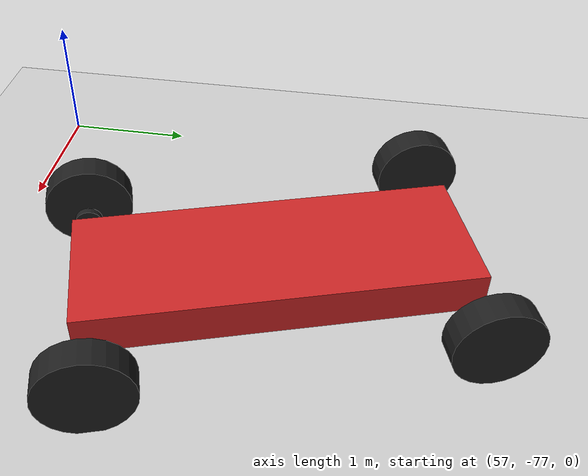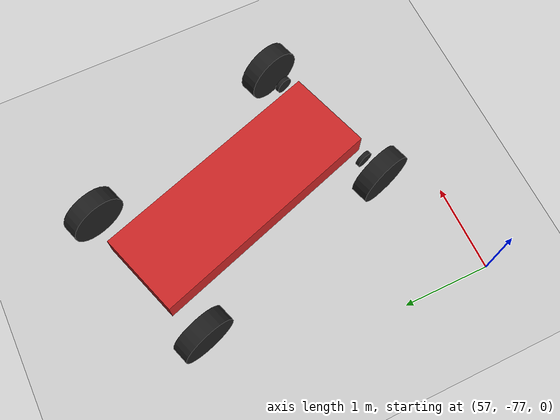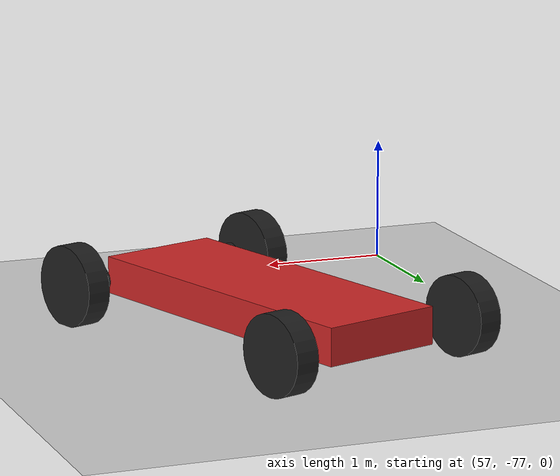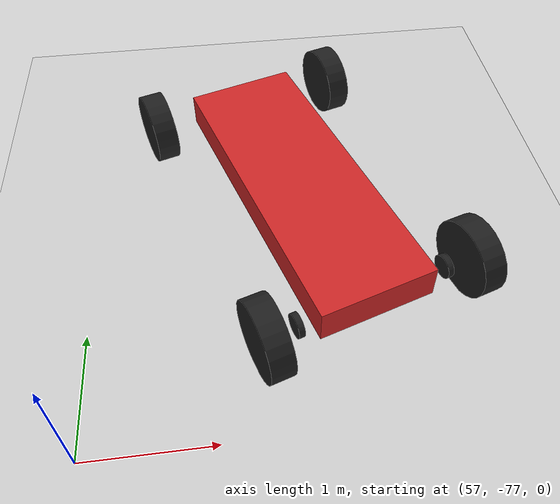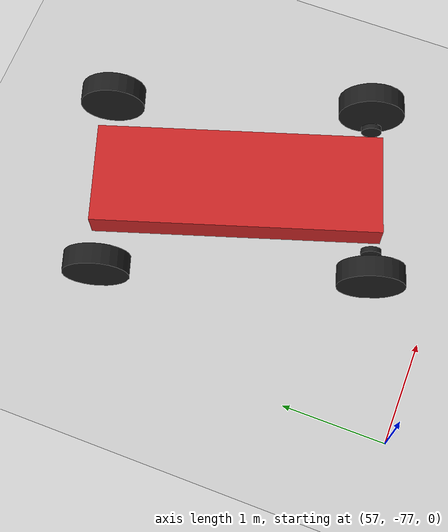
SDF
<sdf version="1.7">
 <world name="default">
  <light name="sun" type="directional">
   <pose>0 0 10 0 -0 0</pose>
   <diffuse>0.8 0.8 0.8 1</diffuse>
   <specular>0.2 0.2 0.2 1</specular>
   <attenuation>
    <range>1000</range>
    <constant>0.9</constant>
    <linear>0.01</linear>
    <quadratic>0.001</quadratic>
   </attenuation>
   <direction>-0.5 0.1 -0.9</direction>
   <spot><inner_angle>0</inner_angle><outer_angle>0</outer_angle><falloff>0</falloff></spot>
  </light>
  <model name="ground_plane">
   <static>1</static>
   <link name="link">
    <collision name="collision">
     <geometry><plane><normal>0 0 1</normal><size>100 100</size></plane></geometry>
     <surface><friction><ode><mu>100</mu><mu2>50</mu2></ode></friction></surface>
    </collision>
    <visual name="visual">
     <cast_shadows>0</cast_shadows>
     <geometry><plane><normal>0 0 1</normal><size>100 100</size></plane></geometry>
     <material>
      <script><uri>file://media/materials/scripts/gazebo.material</uri><name>Gazebo/Grey</name></script>
     </material>
    </visual>
   </link>
  </model>
  <gravity>0 0 -9.8</gravity>
  <magnetic_field>6e-06 2.3e-05 -4.2e-05</magnetic_field>
  <atmosphere type="adiabatic"/>
  <physics type="ode">
   <max_step_size>0.001</max_step_size>
   <real_time_factor>1</real_time_factor>
   <real_time_update_rate>1000</real_time_update_rate>
  </physics>
  <scene><ambient>0.4 0.4 0.4 1</ambient><background>0.7 0.7 0.7 1</background><shadows>1</shadows></scene>
  <spherical_coordinates>
   <surface_model>EARTH_WGS84</surface_model>
   <latitude_deg>0</latitude_deg>
   <longitude_deg>0</longitude_deg>
   <elevation>0</elevation>
   <heading_deg>0</heading_deg>
  </spherical_coordinates>
  <model name="racecar">
   <link name="base_footprint">
    <inertial>
     <pose>0 0 0.32 0 -0 0</pose>
     <mass>4</mass>
     <inertia><ixx>264</ixx><ixy>0</ixy><ixz>0</ixz><iyy>294</iyy><iyz>0</iyz><izz>36.4</izz></inertia>
    </inertial>
    <collision name="base_footprint_fixed_joint_lump__base_link_collision">
     <pose>0 0 0.32 0 -0 0</pose>
     <geometry><box><size>2.8 1 0.3</size></box></geometry>
     <surface>
      <contact><ode><kp>100000</kp><kd>5</kd></ode></contact>
      <friction><ode><mu>1</mu><mu2>1</mu2></ode></friction>
     </surface>
    </collision>
    <visual name="base_footprint_fixed_joint_lump__base_link_visual">
     <pose>0 0 0.32 0 -0 0</pose>
     <geometry><box><size>2.8 1 0.3</size></box></geometry>
     <material>
      <script><name>Gazebo/Red</name><uri>file://media/materials/scripts/gazebo.material</uri></script>
     </material>
    </visual>
   </link>
   <joint name="left_rear_wheel_joint" type="revolute">
    <pose relative_to="base_footprint">-1.3 0.9 0.32 0 -0 0</pose>
    <parent>base_footprint</parent>
    <child>left_rear_wheel</child>
    <axis>
     <xyz>0 1 0</xyz>
     <limit><effort>10</effort><velocity>1000</velocity><lower>-1e+16</lower><upper>1e+16</upper></limit>
     <dynamics><spring_reference>0</spring_reference><spring_stiffness>0</spring_stiffness></dynamics>
    </axis>
   </joint>
   <link name="left_rear_wheel">
    <pose relative_to="left_rear_wheel_joint">0 0 0 0 -0 0</pose>
    <inertial>
     <mass>2</mass>
     <inertia><ixx>0.664</ixx><ixy>0</ixy><ixz>0</ixz><iyy>0.664</iyy><iyz>0</iyz><izz>1.02</izz></inertia>
    </inertial>
    <collision name="left_rear_wheel_collision">
     <pose>0 0 0 1.57 -0 0</pose>
     <geometry><cylinder><length>0.2</length><radius>0.32</radius></cylinder></geometry>
     <surface>
      <contact><ode><kp>100000</kp><kd>5</kd></ode></contact>
      <friction><ode><mu>2</mu><mu2>2</mu2><fdir1>1 0 0</fdir1></ode></friction>
     </surface>
    </collision>
    <visual name="left_rear_wheel_visual">
     <pose>0 0 0 1.57 -0 0</pose>
     <geometry><cylinder><length>0.2</length><radius>0.32</radius></cylinder></geometry>
     <material>
      <script><name>Gazebo/Black</name><uri>file://media/materials/scripts/gazebo.material</uri></script>
     </material>
    </visual>
   </link>
   <joint name="left_steering_hinge_joint" type="revolute">
    <pose relative_to="base_footprint">1.3 0.65 0.32 0 -0 0</pose>
    <parent>base_footprint</parent>
    <child>left_steering_hinge</child>
    <axis>
     <xyz>0 0 1</xyz>
     <limit><lower>-0.6</lower><upper>0.6</upper><effort>5</effort><velocity>100</velocity></limit>
     <dynamics><spring_reference>0</spring_reference><spring_stiffness>0</spring_stiffness></dynamics>
    </axis>
   </joint>
   <link name="left_steering_hinge">
    <pose relative_to="left_steering_hinge_joint">0 0 0 0 -0 0</pose>
    <inertial>
     <mass>1</mass>
     <inertia><ixx>0.027</ixx><ixy>0</ixy><ixz>0</ixz><iyy>0.027</iyy><iyz>0</iyz><izz>0.05</izz></inertia>
    </inertial>
    <collision name="left_steering_hinge_collision">
     <pose>0 0 0 1.57 -0 0</pose>
     <geometry><cylinder><length>0.05</length><radius>0.1</radius></cylinder></geometry>
     <surface>
      <contact><ode><kp>100000</kp><kd>5</kd></ode></contact>
      <friction><ode><mu>1</mu><mu2>1</mu2><fdir1>1 0 0</fdir1></ode></friction>
     </surface>
    </collision>
    <visual name="left_steering_hinge_visual">
     <pose>0 0 0 1.57 -0 0</pose>
     <geometry><cylinder><length>0.05</length><radius>0.1</radius></cylinder></geometry>
     <material>
      <script><name>Gazebo/Black</name><uri>file://media/materials/scripts/gazebo.material</uri></script>
     </material>
    </visual>
   </link>
   <joint name="left_front_wheel_joint" type="revolute">
    <pose relative_to="left_steering_hinge">0 0.25 0 0 -0 0</pose>
    <parent>left_steering_hinge</parent>
    <child>left_front_wheel</child>
    <axis>
     <xyz>0 1 0</xyz>
     <limit><effort>10</effort><velocity>1000</velocity><lower>-1e+16</lower><upper>1e+16</upper></limit>
     <dynamics><spring_reference>0</spring_reference><spring_stiffness>0</spring_stiffness></dynamics>
    </axis>
   </joint>
   <link name="left_front_wheel">
    <pose relative_to="left_front_wheel_joint">0 0 0 0 -0 0</pose>
    <inertial>
     <mass>2</mass>
     <inertia><ixx>0.664</ixx><ixy>0</ixy><ixz>0</ixz><iyy>0.664</iyy><iyz>0</iyz><izz>1.02</izz></inertia>
    </inertial>
    <collision name="left_front_wheel_collision">
     <pose>0 0 0 1.57 -0 0</pose>
     <geometry><cylinder><length>0.2</length><radius>0.32</radius></cylinder></geometry>
     <surface>
      <contact><ode><kp>100000</kp><kd>5</kd></ode></contact>
      <friction><ode><mu>2</mu><mu2>2</mu2><fdir1>0 0 1</fdir1></ode></friction>
     </surface>
    </collision>
    <visual name="left_front_wheel_visual">
     <pose>0 0 0 1.57 -0 0</pose>
     <geometry><cylinder><length>0.2</length><radius>0.33</radius></cylinder></geometry>
     <material>
      <script><name>Gazebo/Black</name><uri>file://media/materials/scripts/gazebo.material</uri></script>
     </material>
    </visual>
   </link>
   <joint name="right_rear_wheel_joint" type="revolute">
    <pose relative_to="base_footprint">-1.3 -0.9 0.32 0 -0 0</pose>
    <parent>base_footprint</parent>
    <child>right_rear_wheel</child>
    <axis>
     <xyz>0 1 0</xyz>
     <limit><effort>10</effort><velocity>1000</velocity><lower>-1e+16</lower><upper>1e+16</upper></limit>
     <dynamics><spring_reference>0</spring_reference><spring_stiffness>0</spring_stiffness></dynamics>
    </axis>
   </joint>
   <link name="right_rear_wheel">
    <pose relative_to="right_rear_wheel_joint">0 0 0 0 -0 0</pose>
    <inertial>
     <mass>2</mass>
     <inertia><ixx>0.664</ixx><ixy>0</ixy><ixz>0</ixz><iyy>0.664</iyy><iyz>0</iyz><izz>1.02</izz></inertia>
    </inertial>
    <collision name="right_rear_wheel_collision">
     <pose>0 0 0 1.57 -0 0</pose>
     <geometry><cylinder><length>0.2</length><radius>0.32</radius></cylinder></geometry>
     <surface>
      <contact><ode><kp>100000</kp><kd>5</kd></ode></contact>
      <friction><ode><mu>2</mu><mu2>2</mu2><fdir1>1 0 0</fdir1></ode></friction>
     </surface>
    </collision>
    <visual name="right_rear_wheel_visual">
     <pose>0 0 0 1.57 -0 0</pose>
     <geometry><cylinder><length>0.2</length><radius>0.32</radius></cylinder></geometry>
     <material>
      <script><name>Gazebo/Black</name><uri>file://media/materials/scripts/gazebo.material</uri></script>
     </material>
    </visual>
   </link>
   <joint name="right_steering_hinge_joint" type="revolute">
    <pose relative_to="base_footprint">1.3 -0.65 0.32 0 -0 0</pose>
    <parent>base_footprint</parent>
    <child>right_steering_hinge</child>
    <axis>
     <xyz>0 0 1</xyz>
     <limit><lower>-0.6</lower><upper>0.6</upper><effort>5</effort><velocity>100</velocity></limit>
     <dynamics><spring_reference>0</spring_reference><spring_stiffness>0</spring_stiffness></dynamics>
    </axis>
   </joint>
   <link name="right_steering_hinge">
    <pose relative_to="right_steering_hinge_joint">0 0 0 0 -0 0</pose>
    <inertial>
     <mass>1</mass>
     <inertia><ixx>0.027</ixx><ixy>0</ixy><ixz>0</ixz><iyy>0.027</iyy><iyz>0</iyz><izz>0.05</izz></inertia>
    </inertial>
    <collision name="right_steering_hinge_collision">
     <pose>0 0 0 1.57 -0 0</pose>
     <geometry><cylinder><length>0.05</length><radius>0.1</radius></cylinder></geometry>
     <surface>
      <contact><ode><kp>100000</kp><kd>5</kd></ode></contact>
      <friction><ode><mu>1</mu><mu2>1</mu2><fdir1>1 0 0</fdir1></ode></friction>
     </surface>
    </collision>
    <visual name="right_steering_hinge_visual">
     <pose>0 0 0 1.57 -0 0</pose>
     <geometry><cylinder><length>0.05</length><radius>0.1</radius></cylinder></geometry>
     <material>
      <script><name>Gazebo/Black</name><uri>file://media/materials/scripts/gazebo.material</uri></script>
     </material>
    </visual>
   </link>
   <joint name="right_front_wheel_joint" type="revolute">
    <pose relative_to="right_steering_hinge">0 -0.25 0 0 -0 0</pose>
    <parent>right_steering_hinge</parent>
    <child>right_front_wheel</child>
    <axis>
     <xyz>0 1 0</xyz>
     <limit><effort>10</effort><velocity>1000</velocity><lower>-1e+16</lower><upper>1e+16</upper></limit>
     <dynamics><spring_reference>0</spring_reference><spring_stiffness>0</spring_stiffness></dynamics>
    </axis>
   </joint>
   <link name="right_front_wheel">
    <pose relative_to="right_front_wheel_joint">0 0 0 0 -0 0</pose>
    <inertial>
     <mass>2</mass>
     <inertia><ixx>0.664</ixx><ixy>0</ixy><ixz>0</ixz><iyy>0.664</iyy><iyz>0</iyz><izz>1.02</izz></inertia>
    </inertial>
    <collision name="right_front_wheel_collision">
     <pose>0 0 0 1.57 -0 0</pose>
     <geometry><cylinder><length>0.2</length><radius>0.32</radius></cylinder></geometry>
     <surface>
      <contact><ode><kp>100000</kp><kd>5</kd></ode></contact>
      <friction><ode><mu>2</mu><mu2>2</mu2><fdir1>0 0 1</fdir1></ode></friction>
     </surface>
    </collision>
    <visual name="right_front_wheel_visual">
     <pose>0 0 0 1.57 -0 0</pose>
     <geometry><cylinder><length>0.2</length><radius>0.33</radius></cylinder></geometry>
     <material>
      <script><name>Gazebo/Black</name><uri>file://media/materials/scripts/gazebo.material</uri></script>
     </material>
    </visual>
   </link>
   <plugin name="gazebo_ros_control" filename="libgazebo_ros_control.so">
    <robotNamespace>/racecar</robotNamespace>
    <robotParam>robot_description</robotParam>
    <robotSimType>gazebo_ros_control/DefaultRobotHWSim</robotSimType>
   </plugin>
   <plugin name="joint_state_publisher" filename="libgazebo_ros_joint_state_publisher.so">
    <jointName>right_rear_wheel_joint, left_rear_wheel_joint, right_front_wheel_joint, right_steering_hinge_joint, left_front_wheel_joint, left_steering_hinge_joint</jointName>
    <updateRate>50.0</updateRate>
    <robotNamespace>/racecar</robotNamespace>
    <alwaysOn>1</alwaysOn>
   </plugin>
   <frame name="base_link2base_footprint" attached_to="base_footprint"><pose>0 0 0.32 0 -0 0</pose></frame>
   <frame name="base_link" attached_to="base_link2base_footprint"/>
   <pose>58.8398 -74.8623 -0.00323 6.8e-05 0.002556 -1.25928</pose>
  </model>
 </world>
</sdf>
